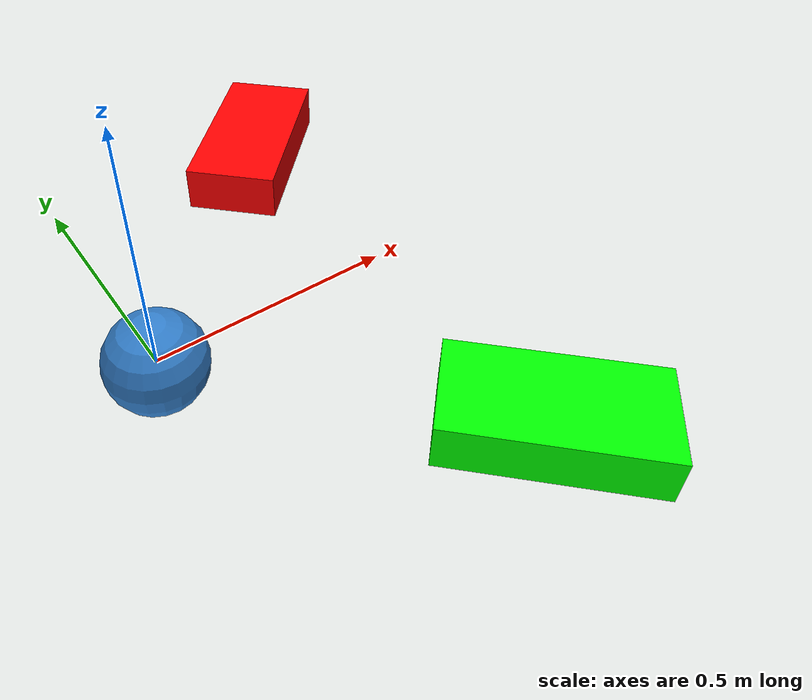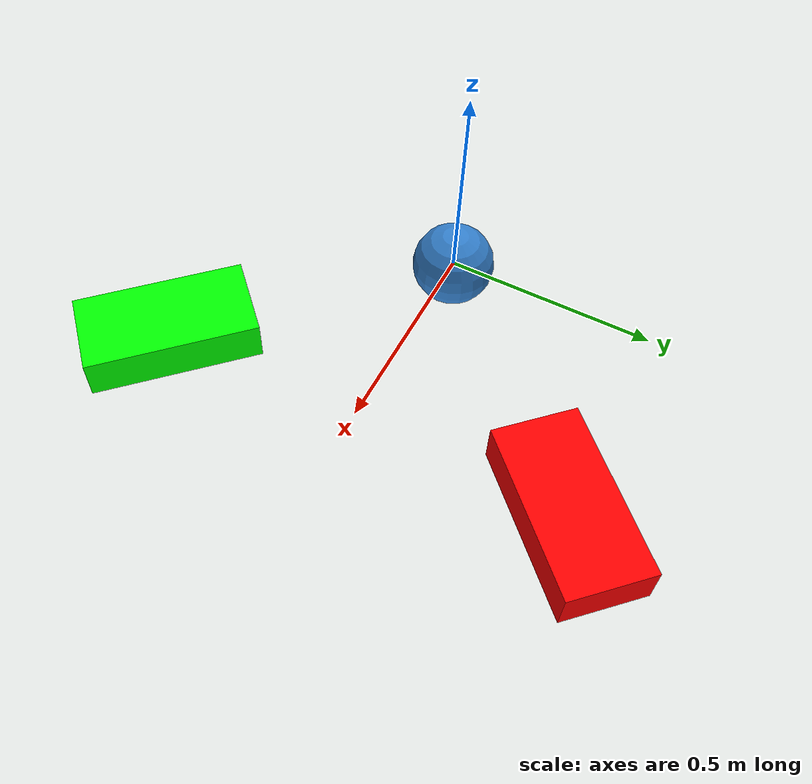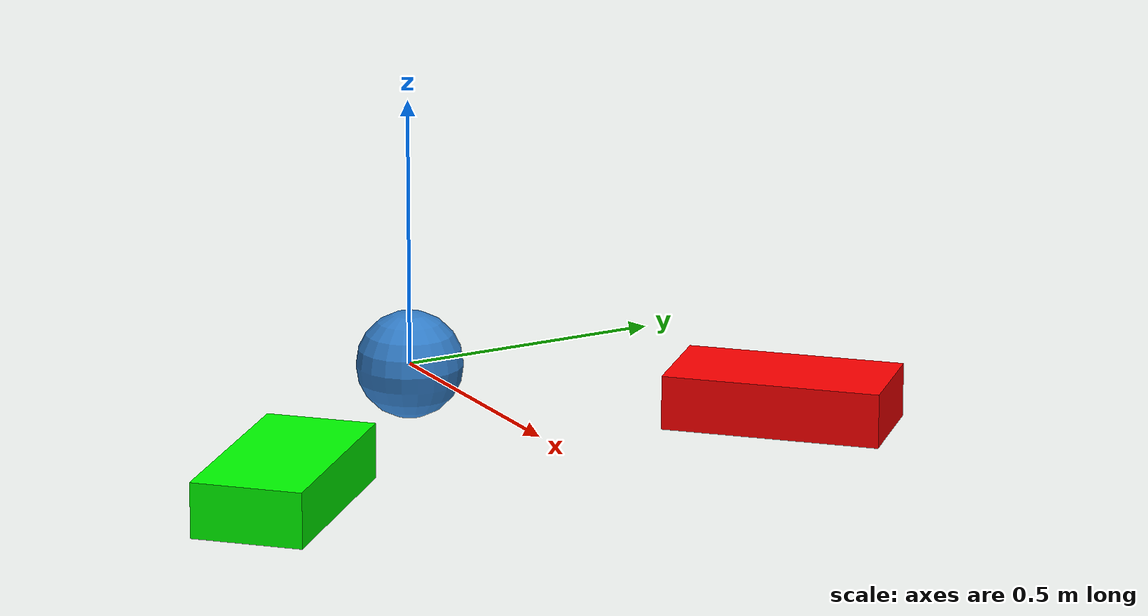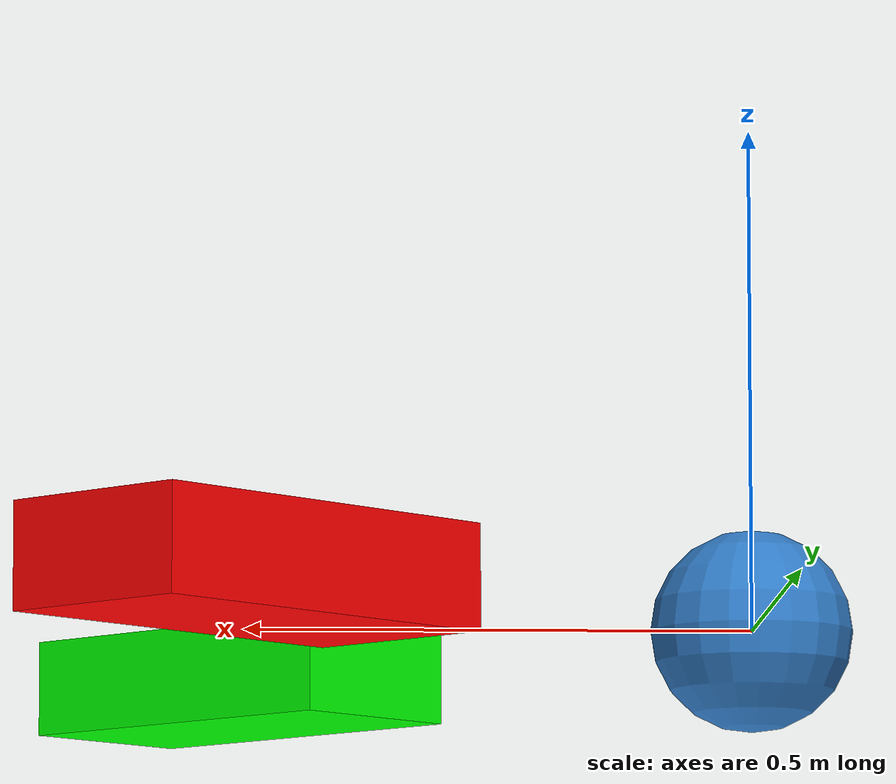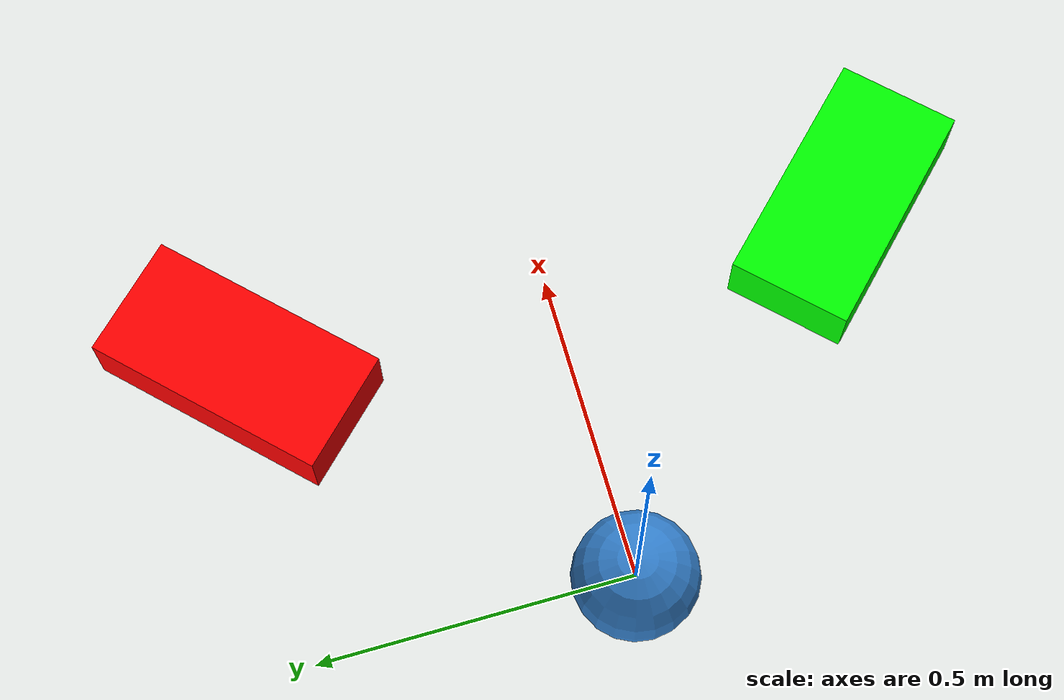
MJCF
<mujoco model="frame_orientation_example">

  <option gravity="0 0 -9.81"/>

  <compiler angle="radian"/>

  <worldbody>
    <body name="root_body" pos="0 0 0">

      <geom type="sphere" size="0.1" rgba="0.2 0.5 0.8 1"/>

      <!-- body con màu đỏ, xoay bằng quaternion -->
      <body name="child_body_quat" pos="0.5 0.5 0" quat="0.92388 0 0 0.38268">
        <geom type="box" size="0.2 0.1 0.05" rgba="1 0 0 1"/>
      </body>

      <!-- body con màu xanh, xoay bằng axisangle -->
      <body name="child_body_axisangle" pos="0.5 -0.5 0" axisangle="0 0 1 -0.785">
        <geom type="box" size="0.2 0.1 0.05" rgba="0 1 0 1"/>
      </body>

    </body>
  </worldbody>
</mujoco>
